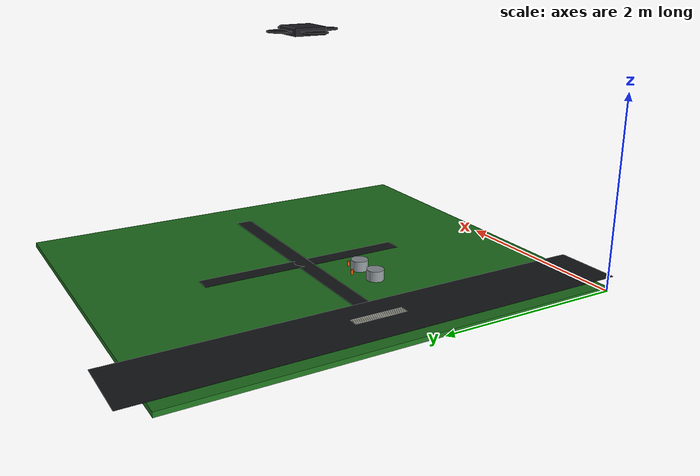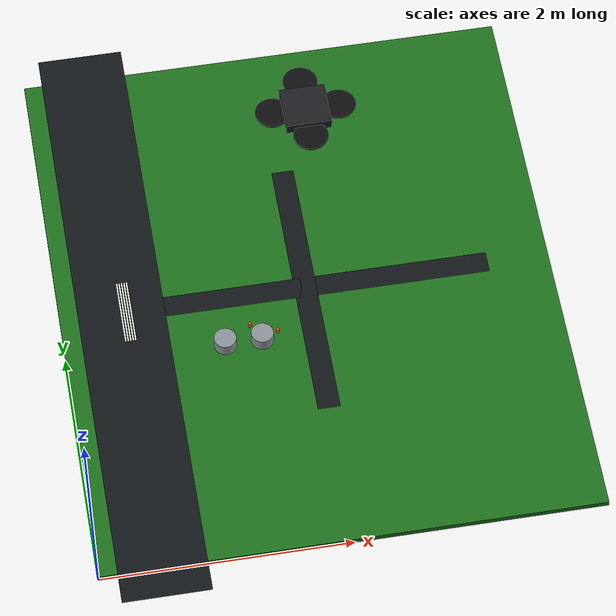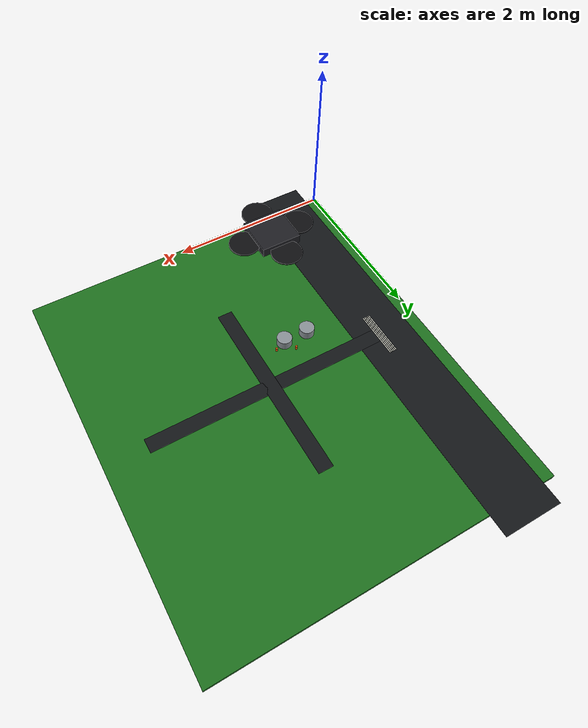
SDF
<sdf version="1.7">
 <world name="nexus_sandbox_imx219">
  <model name="sandbox_deck">
   <static>true</static>
   <pose>2.0 2.35 0.025 0 0 0</pose>
   <link name="link">
    <collision name="collision"><geometry><box><size>4.0 4.7 0.05</size></box></geometry></collision>
    <visual name="visual">
     <geometry><box><size>4.0 4.7 0.05</size></box></geometry>
     <material><ambient>0.12 0.45 0.12 1</ambient><diffuse>0.12 0.45 0.12 1</diffuse></material>
    </visual>
   </link>
  </model>
  <model name="RD-RING-W">
   <static>true</static>
   <pose>0.5 2.35 0.051000000000000004 0 0 0</pose>
   <link name="link">
    <collision name="collision">
     <geometry><box><size>0.7000000000000001 5.2 0.002</size></box></geometry>
    </collision>
    <visual name="visual">
     <geometry><box><size>0.7000000000000001 5.2 0.002</size></box></geometry>
     <material><ambient>0.08 0.09 0.1 1</ambient><diffuse>0.08 0.09 0.1 1</diffuse></material>
    </visual>
   </link>
  </model>
  <model name="RD-C-X">
   <static>true</static>
   <pose>2.0 2.35 0.051000000000000004 0 0 0</pose>
   <link name="link">
    <collision name="collision"><geometry><box><size>3.0 0.18 0.002</size></box></geometry></collision>
    <visual name="visual">
     <geometry><box><size>3.0 0.18 0.002</size></box></geometry>
     <material><ambient>0.08 0.09 0.1 1</ambient><diffuse>0.08 0.09 0.1 1</diffuse></material>
    </visual>
   </link>
  </model>
  <model name="RD-C-Y">
   <static>true</static>
   <pose>2.0 2.35 0.051000000000000004 0 0 0</pose>
   <link name="link">
    <collision name="collision">
     <geometry><box><size>0.18 2.3000000000000003 0.002</size></box></geometry>
    </collision>
    <visual name="visual">
     <geometry><box><size>0.18 2.3000000000000003 0.002</size></box></geometry>
     <material><ambient>0.08 0.09 0.1 1</ambient><diffuse>0.08 0.09 0.1 1</diffuse></material>
    </visual>
   </link>
  </model>
  <model name="CW-C-W-05">
   <static>true</static>
   <pose>0.5 2.35 0.05450000000000001 0 0 0</pose>
   <link name="link">
    <collision name="collision"><geometry><box><size>0.014 0.56 0.004</size></box></geometry></collision>
    <visual name="visual">
     <geometry><box><size>0.014 0.56 0.004</size></box></geometry>
     <material><ambient>0.93 0.93 0.88 1</ambient><diffuse>0.93 0.93 0.88 1</diffuse></material>
    </visual>
   </link>
  </model>
  <model name="CW-C-W-06">
   <static>true</static>
   <pose>0.52 2.35 0.05450000000000001 0 0 0</pose>
   <link name="link">
    <collision name="collision"><geometry><box><size>0.014 0.56 0.004</size></box></geometry></collision>
    <visual name="visual">
     <geometry><box><size>0.014 0.56 0.004</size></box></geometry>
     <material><ambient>0.93 0.93 0.88 1</ambient><diffuse>0.93 0.93 0.88 1</diffuse></material>
    </visual>
   </link>
  </model>
  <model name="CW-C-W-07">
   <static>true</static>
   <pose>0.54 2.35 0.05450000000000001 0 0 0</pose>
   <link name="link">
    <collision name="collision"><geometry><box><size>0.014 0.56 0.004</size></box></geometry></collision>
    <visual name="visual">
     <geometry><box><size>0.014 0.56 0.004</size></box></geometry>
     <material><ambient>0.93 0.93 0.88 1</ambient><diffuse>0.93 0.93 0.88 1</diffuse></material>
    </visual>
   </link>
  </model>
  <model name="CW-C-W-08">
   <static>true</static>
   <pose>0.56 2.35 0.05450000000000001 0 0 0</pose>
   <link name="link">
    <collision name="collision"><geometry><box><size>0.014 0.56 0.004</size></box></geometry></collision>
    <visual name="visual">
     <geometry><box><size>0.014 0.56 0.004</size></box></geometry>
     <material><ambient>0.93 0.93 0.88 1</ambient><diffuse>0.93 0.93 0.88 1</diffuse></material>
    </visual>
   </link>
  </model>
  <model name="CW-C-W-09">
   <static>true</static>
   <pose>0.58 2.35 0.05450000000000001 0 0 0</pose>
   <link name="link">
    <collision name="collision"><geometry><box><size>0.014 0.56 0.004</size></box></geometry></collision>
    <visual name="visual">
     <geometry><box><size>0.014 0.56 0.004</size></box></geometry>
     <material><ambient>0.93 0.93 0.88 1</ambient><diffuse>0.93 0.93 0.88 1</diffuse></material>
    </visual>
   </link>
  </model>
  <model name="SW-T01">
   <static>true</static>
   <pose>1.28 1.9100000000000001 0.10500000000000001 0 0 0</pose>
   <link name="link">
    <collision name="collision">
     <geometry><cylinder><radius>0.09</radius><length>0.11</length></cylinder></geometry>
    </collision>
    <visual name="visual">
     <geometry><cylinder><radius>0.09</radius><length>0.11</length></cylinder></geometry>
     <material><ambient>0.55 0.58 0.6 1</ambient><diffuse>0.55 0.58 0.6 1</diffuse></material>
    </visual>
   </link>
  </model>
  <model name="SW-T02">
   <static>true</static>
   <pose>1.58 1.9100000000000001 0.10500000000000001 0 0 0</pose>
   <link name="link">
    <collision name="collision">
     <geometry><cylinder><radius>0.09</radius><length>0.11</length></cylinder></geometry>
    </collision>
    <visual name="visual">
     <geometry><cylinder><radius>0.09</radius><length>0.11</length></cylinder></geometry>
     <material><ambient>0.55 0.58 0.6 1</ambient><diffuse>0.55 0.58 0.6 1</diffuse></material>
    </visual>
   </link>
  </model>
  <model name="SW-C-02">
   <static>true</static>
   <pose>1.7121320343559643 1.9621320343559643 0.07500000000000001 0 0 0</pose>
   <link name="link">
    <collision name="collision">
     <geometry><cylinder><radius>0.0125</radius><length>0.05</length></cylinder></geometry>
    </collision>
    <visual name="visual">
     <geometry><cylinder><radius>0.0125</radius><length>0.05</length></cylinder></geometry>
     <material><ambient>0.95 0.35 0.05 1</ambient><diffuse>0.95 0.35 0.05 1</diffuse></material>
    </visual>
   </link>
  </model>
  <model name="SW-C-03">
   <static>true</static>
   <pose>1.5 2.05 0.07500000000000001 0 0 0</pose>
   <link name="link">
    <collision name="collision">
     <geometry><cylinder><radius>0.0125</radius><length>0.05</length></cylinder></geometry>
    </collision>
    <visual name="visual">
     <geometry><cylinder><radius>0.0125</radius><length>0.05</length></cylinder></geometry>
     <material><ambient>0.95 0.35 0.05 1</ambient><diffuse>0.95 0.35 0.05 1</diffuse></material>
    </visual>
   </link>
  </model>
  <model name="SW-C-04">
   <static>true</static>
   <pose>1.2878679656440357 1.9621320343559643 0.07500000000000001 0 0 0</pose>
   <link name="link">
    <collision name="collision">
     <geometry><cylinder><radius>0.0125</radius><length>0.05</length></cylinder></geometry>
    </collision>
    <visual name="visual">
     <geometry><cylinder><radius>0.0125</radius><length>0.05</length></cylinder></geometry>
     <material><ambient>0.95 0.35 0.05 1</ambient><diffuse>0.95 0.35 0.05 1</diffuse></material>
    </visual>
   </link>
  </model>
  <model name="nexus_uav">
   <static>false</static>
   <pose>2.0 2.35 2.5 0 0 0</pose>
   <link name="base_link">
    <gravity>false</gravity>
    <visual name="body">
     <geometry><box><size>0.34 0.34 0.08</size></box></geometry>
     <material><ambient>0.12 0.12 0.14 1</ambient><diffuse>0.12 0.12 0.14 1</diffuse></material>
    </visual>
    <visual name="rotor_x">
     <pose>0.25 0 0 0 0 0</pose>
     <geometry><cylinder><radius>0.13</radius><length>0.012</length></cylinder></geometry>
     <material><ambient>0.06 0.06 0.07 1</ambient><diffuse>0.06 0.06 0.07 1</diffuse></material>
    </visual>
    <visual name="rotor_y">
     <pose>0 0.25 0 0 0 0</pose>
     <geometry><cylinder><radius>0.13</radius><length>0.012</length></cylinder></geometry>
     <material><ambient>0.06 0.06 0.07 1</ambient><diffuse>0.06 0.06 0.07 1</diffuse></material>
    </visual>
    <visual name="rotor_neg_x">
     <pose>-0.25 0 0 0 0 0</pose>
     <geometry><cylinder><radius>0.13</radius><length>0.012</length></cylinder></geometry>
     <material><ambient>0.06 0.06 0.07 1</ambient><diffuse>0.06 0.06 0.07 1</diffuse></material>
    </visual>
    <visual name="rotor_neg_y">
     <pose>0 -0.25 0 0 0 0</pose>
     <geometry><cylinder><radius>0.13</radius><length>0.012</length></cylinder></geometry>
     <material><ambient>0.06 0.06 0.07 1</ambient><diffuse>0.06 0.06 0.07 1</diffuse></material>
    </visual>
    <sensor name="imx219" type="camera">
     <pose>0 0 -0.06 0 1.57079632679 0</pose>
     <always_on>true</always_on>
     <visualize>true</visualize>
     <update_rate>21</update_rate>
     <camera name="imx219">
      <horizontal_fov>1.384046096832</horizontal_fov>
      <image><width>3280</width><height>2464</height><format>R8G8B8</format></image>
      <clip><near>0.05</near><far>30.0</far></clip>
     </camera>
     <plugin name="nexus_imx219_camera" filename="libgazebo_ros_camera.so">
      <ros><namespace>/nexus/camera</namespace></ros>
      <camera_name>imx219</camera_name>
      <frame_name>nexus_uav_camera_optical_frame</frame_name>
     </plugin>
    </sensor>
   </link>
   <plugin name="nexus_uav_planar_move" filename="libgazebo_ros_planar_move.so">
    <ros>
     <namespace>/nexus/gazebo/uav</namespace>
     <remapping>cmd_vel:=cmd_vel</remapping>
     <remapping>odom:=odom</remapping>
    </ros>
    <update_rate>100</update_rate>
    <publish_rate>30</publish_rate>
    <publish_odom>true</publish_odom>
    <publish_odom_tf>true</publish_odom_tf>
    <odometry_frame>map</odometry_frame>
    <robot_base_frame>base_link</robot_base_frame>
   </plugin>
  </model>
 </world>
</sdf>
